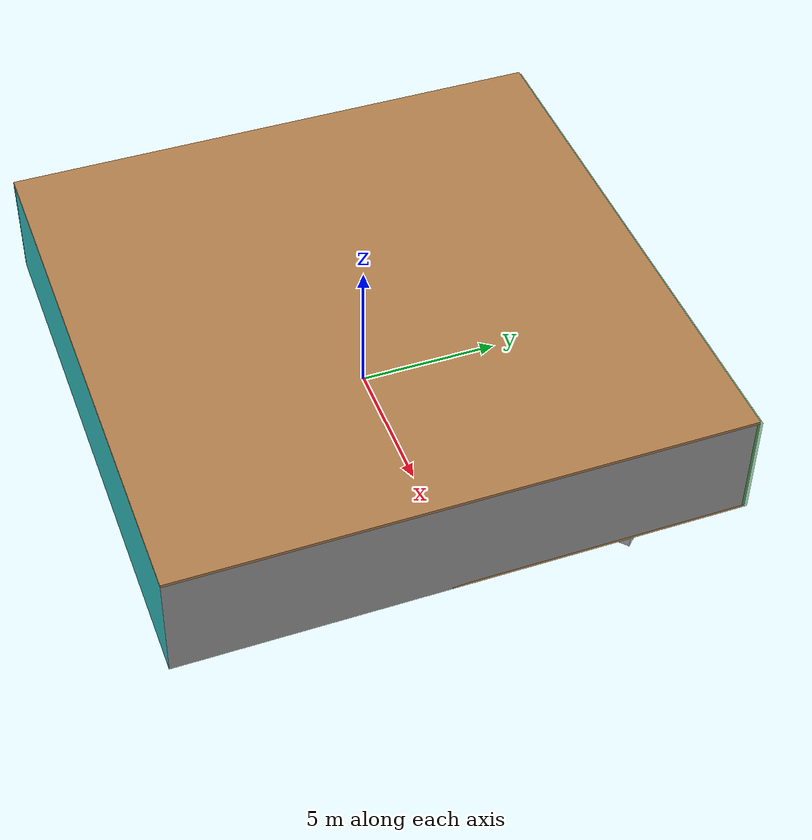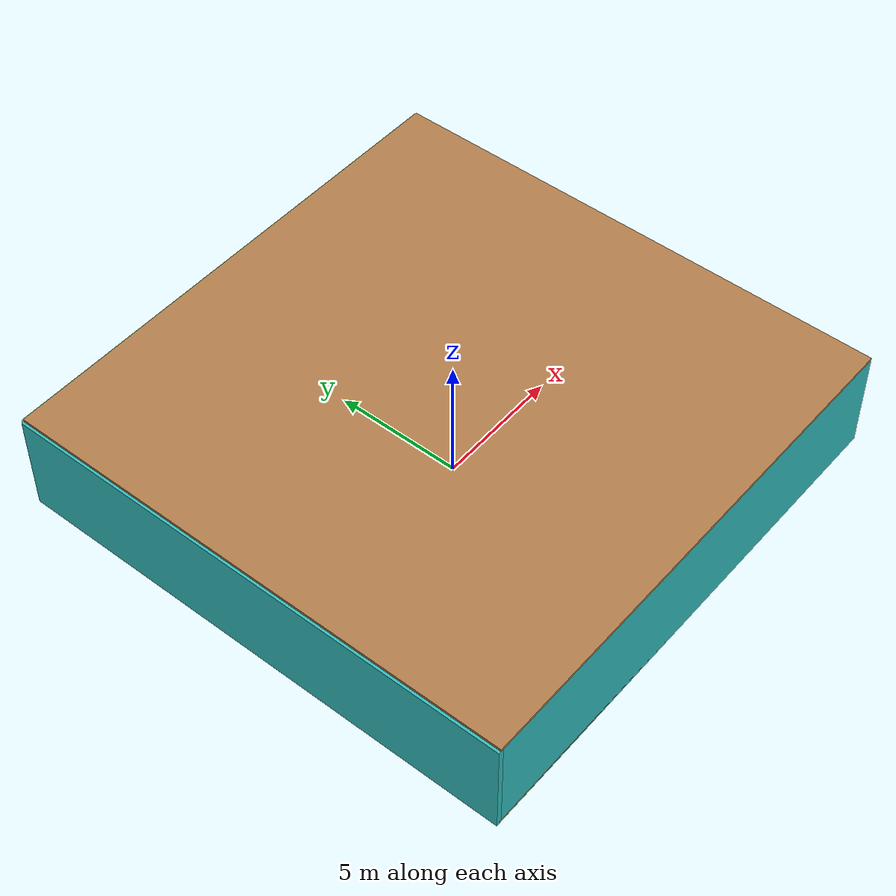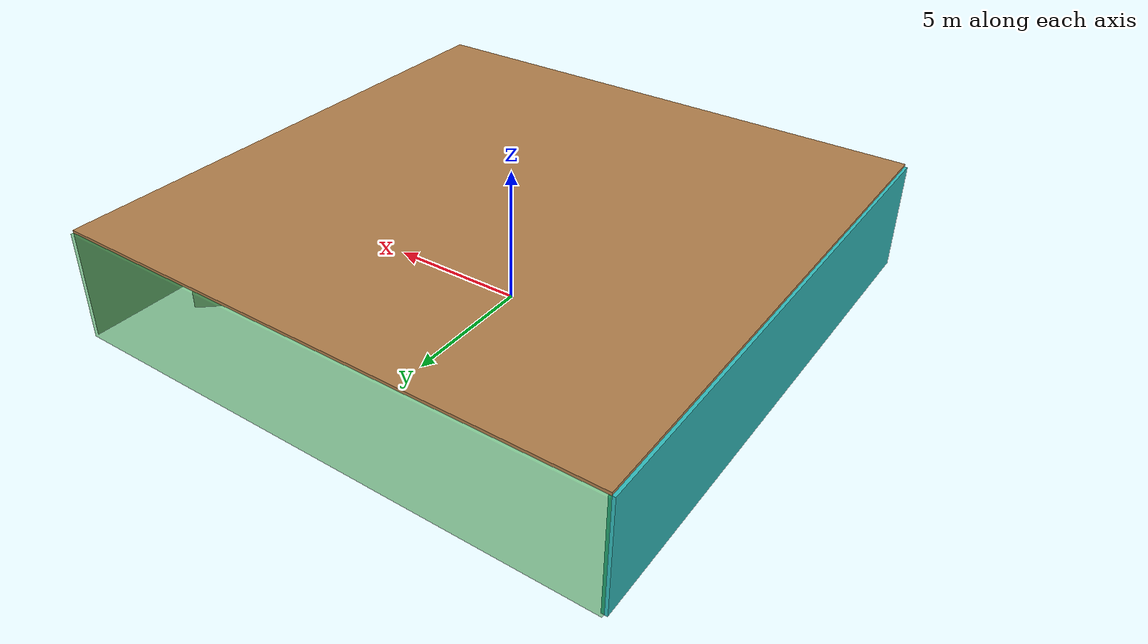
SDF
<sdf version="1.4">
 <world name="default">
  <physics type="ode">
   <max_step_size>0.001</max_step_size>
   <real_time_factor>1</real_time_factor>
   <real_time_update_rate>1000</real_time_update_rate>
   <gravity>0 0 -9.8</gravity>
  </physics>
  <scene><ambient>0.4 0.4 0.4 1</ambient><background>0.7 0.7 0.7 1</background><shadows>1</shadows></scene>
  <model name="Surrounding">
   <static>1</static>
   <link name="Ceiling">
    <collision name="Ceiling_Collision"><geometry><box><size>20 20 0.1</size></box></geometry></collision>
    <visual name="Ceiling_Visual">
     <geometry><box><size>20 20 0.1</size></box></geometry>
     <material>
      <script><uri>file://media/materials/scripts/gazebo.material</uri><name>Gazebo/WoodPallet</name></script>
     </material>
    </visual>
    <pose>0 0 4.05 0 0 0</pose>
   </link>
   <link name="Wall_South">
    <collision name="Wall_South_Collision">
     <geometry><box><size>20 0 4</size></box></geometry>
     <pose>0 0 2 0 -0 0</pose>
    </collision>
    <visual name="Wall_South_Visual">
     <pose>0 0 2 0 -0 0</pose>
     <geometry><box><size>20 0 4</size></box></geometry>
     <material>
      <script><uri>file://media/materials/scripts/gazebo.material</uri><name>Gazebo/TurquoiseGlow</name></script>
     </material>
    </visual>
    <velocity_decay><linear>0</linear><angular>0</angular></velocity_decay>
    <pose>0 -10 0 0 -0 0</pose>
   </link>
   <link name="Wall_East">
    <collision name="Wall_21_Collision">
     <geometry><box><size>20 0 4</size></box></geometry>
     <pose>0 0 2 0 -0 0</pose>
    </collision>
    <visual name="Wall_21_Visual">
     <pose>0 0 2 0 -0 0</pose>
     <geometry><box><size>20 0 4</size></box></geometry>
     <material>
      <script><uri>file://media/materials/scripts/gazebo.material</uri><name>Gazebo/Grey</name></script>
     </material>
    </visual>
    <velocity_decay><linear>0</linear><angular>0</angular></velocity_decay>
    <pose>10 0 0 0 -0 1.5708</pose>
   </link>
   <link name="Wall_North">
    <collision name="Wall_22_Collision">
     <geometry><box><size>20 0.2 4</size></box></geometry>
     <pose>0 0 2 0 -0 0</pose>
    </collision>
    <visual name="Wall_22_Visual">
     <pose>0 0 2 0 -0 0</pose>
     <geometry><box><size>20 0.2 4</size></box></geometry>
     <material>
      <script><uri>file://media/materials/scripts/gazebo.material</uri><name>Gazebo/GreenTransparent</name></script>
     </material>
    </visual>
    <velocity_decay><linear>0</linear><angular>0</angular></velocity_decay>
    <pose>0 10 0 0 -0 0</pose>
   </link>
   <link name="Wall_West">
    <collision name="Wall_23_Collision">
     <geometry><box><size>20 0.2 4</size></box></geometry>
     <pose>0 0 2 0 -0 0</pose>
    </collision>
    <visual name="Wall_23_Visual">
     <pose>0 0 2 0 -0 0</pose>
     <geometry><box><size>20 0.2 4</size></box></geometry>
     <material>
      <script>
       <uri>file://media/materials/scripts/gazebo.material</uri>
       <name>Gazebo/TurquoiseGlowOutline</name>
      </script>
     </material>
    </visual>
    <velocity_decay><linear>0</linear><angular>0</angular></velocity_decay>
    <pose>-10 0 0 0 0 -1.5708</pose>
   </link>
   <link name="Ground_link">
    <collision name="collision">
     <pose>0 0 .05 0 -0 0</pose>
     <geometry><box><size>20 20 0.1</size></box></geometry>
    </collision>
    <visual name="visual">
     <pose>0 0 .05 0 -0 0</pose>
     <geometry><box><size>20 20 0.1</size></box></geometry>
     <material>
      <script>
       <uri>file://media/materials/scripts/gazebo.material</uri>
       <name>Gazebo/OrangeTransparent</name>
      </script>
     </material>
    </visual>
   </link>
   <static>1</static>
  </model>
  <spherical_coordinates>
   <surface_model>EARTH_WGS84</surface_model>
   <latitude_deg>0</latitude_deg>
   <longitude_deg>0</longitude_deg>
   <elevation>0</elevation>
   <heading_deg>0</heading_deg>
  </spherical_coordinates>
  <light name="lightball_0" type="diffuse">
   <diffuse>0.8 0.8 0.8 1</diffuse>
   <specular>0.2 0.2 0.2 1</specular>
   <attenuation>
    <range>100</range>
    <constant>0.7</constant>
    <linear>0.01</linear>
    <quadratic>0.001</quadratic>
   </attenuation>
   <direction>-0.5 0.1 -0.9</direction>
   <pose>7.29323243995 -6.91062443537 2.83097554204 0 0 0</pose>
  </light>
  <light name="lightball_1" type="diffuse">
   <diffuse>0.8 0.8 0.8 1</diffuse>
   <specular>0.2 0.2 0.2 1</specular>
   <attenuation>
    <range>100</range>
    <constant>0.7</constant>
    <linear>0.01</linear>
    <quadratic>0.001</quadratic>
   </attenuation>
   <direction>-0.5 0.1 -0.9</direction>
   <pose>-2.52139661432 8.07149067501 3.16985652571 0 0 0</pose>
  </light>
  <light name="lightball_2" type="diffuse">
   <diffuse>0.8 0.8 0.8 1</diffuse>
   <specular>0.2 0.2 0.2 1</specular>
   <attenuation>
    <range>100</range>
    <constant>0.7</constant>
    <linear>0.01</linear>
    <quadratic>0.001</quadratic>
   </attenuation>
   <direction>-0.5 0.1 -0.9</direction>
   <pose>-2.08402988795 -7.54003683866 3.39807416386 0 0 0</pose>
  </light>
  <include>
   <uri>model://robocup_3Dsim_goal</uri>
   <pose>-8.02844787584 4.19436609479 0 0 0 0.102480300528</pose>
  </include>
  <include><uri>model://table</uri><pose>-4.95935378194 -5.02305531503 0 0 0 2.16945643318</pose></include>
  <include>
   <uri>model://robocup_3Dsim_goal</uri>
   <pose>7.9518894754 -0.788871318856 0 0 0 2.37271920559</pose>
  </include>
  <include>
   <uri>model://textured_shapes</uri>
   <pose>8.10515125357 4.86779252807 0 0 0 2.31268035703</pose>
  </include>
 </world>
</sdf>

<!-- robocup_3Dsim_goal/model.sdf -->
<sdf version="1.5">
  <model name="robocup_3d_goal">
    <static>true</static>
    <link name="left_post">
      <pose>0 1.05 0.45 0 0 0</pose>
      <collision name="collision">
        <geometry>
          <cylinder>
            <radius>0.05</radius>
            <length>0.9</length>
          </cylinder>
        </geometry>
      </collision>
      <visual name="visual">
        <geometry>
          <cylinder>
            <radius>0.05</radius>
            <length>0.9</length>
          </cylinder>
        </geometry>
        <material>
          <script>
            <uri>file://media/materials/scripts/gazebo.material</uri>
            <name>Gazebo/ZincYellow</name>
          </script>
        </material>
      </visual>
    </link>
    <link name="left_support_horiz_lower">
      <pose>0.30 1.05 0.01 0 0 0</pose>
      <collision name="collision">
        <geometry>
          <box>
            <size>0.50 0.02 0.02</size>
          </box>
        </geometry>
      </collision>
      <visual name="visual">
        <geometry>
          <box>
            <size>0.50 0.02 0.02</size>
          </box>
        </geometry>
        <material>
          <script>
            <uri>file://media/materials/scripts/gazebo.material</uri>
            <name>Gazebo/White</name>
          </script>
        </material>
      </visual>
    </link>
    <link name="left_support_horiz_upper">
      <pose>0.30 1.05 0.79 0 0 0</pose>
      <collision name="collision">
        <geometry>
          <box>
            <size>0.50 0.02 0.02</size>
          </box>
        </geometry>
      </collision>
      <visual name="visual">
        <geometry>
          <box>
            <size>0.50 0.02 0.02</size>
          </box>
        </geometry>
        <material>
          <script>
            <uri>file://media/materials/scripts/gazebo.material</uri>
            <name>Gazebo/White</name>
          </script>
        </material>
      </visual>
    </link>
    <link name="left_support_vertical">
      <pose>0.56 1.05 0.4 0 1.5708 0</pose>
      <collision name="collision">
        <geometry>
          <box>
            <size>0.80 0.02 0.02</size>
          </box>
        </geometry>
      </collision>
      <visual name="visual">
        <geometry>
          <box>
            <size>0.80 0.02 0.02</size>
          </box>
        </geometry>
        <material>
          <script>
            <uri>file://media/materials/scripts/gazebo.material</uri>
            <name>Gazebo/White</name>
          </script>
        </material>
      </visual>
    </link>
    <link name="right_support_horiz_lower">
      <pose>0.30 -1.05 0.01 0 0 0</pose>
      <collision name="collision">
        <geometry>
          <box>
            <size>0.50 0.02 0.02</size>
          </box>
        </geometry>
      </collision>
      <visual name="visual">
        <geometry>
          <box>
            <size>0.50 0.02 0.02</size>
          </box>
        </geometry>
        <material>
          <script>
            <uri>file://media/materials/scripts/gazebo.material</uri>
            <name>Gazebo/White</name>
          </script>
        </material>
      </visual>
    </link>
    <link name="right_support_horiz_upper">
      <pose>0.30 -1.05 0.79 0 0 0</pose>
      <collision name="collision">
        <geometry>
          <box>
            <size>0.50 0.02 0.02</size>
          </box>
        </geometry>
      </collision>
      <visual name="visual">
        <geometry>
          <box>
            <size>0.50 0.02 0.02</size>
          </box>
        </geometry>
        <material>
          <script>
            <uri>file://media/materials/scripts/gazebo.material</uri>
            <name>Gazebo/White</name>
          </script>
        </material>
      </visual>
    </link>
    <link name="right_support_vertical">
      <pose>0.56 -1.05 0.4 0 1.5708 0</pose>
      <collision name="collision">
        <geometry>
          <box>
            <size>0.80 0.02 0.02</size>
          </box>
        </geometry>
      </collision>
      <visual name="visual">
        <geometry>
          <box>
            <size>0.80 0.02 0.02</size>
          </box>
        </geometry>
        <material>
          <script>
            <uri>file://media/materials/scripts/gazebo.material</uri>
            <name>Gazebo/White</name>
          </script>
        </material>
      </visual>
    </link>
    <link name="center_support_horiz_lower">
      <pose>0.56 0 0.01 0 1.5708 0</pose>
      <collision name="collision">
        <geometry>
          <box>
            <size>0.02 2.08 0.02</size>
          </box>
        </geometry>
      </collision>
      <visual name="visual">
        <geometry>
          <box>
            <size>0.02 2.08 0.02</size>
          </box>
        </geometry>
        <material>
          <script>
            <uri>file://media/materials/scripts/gazebo.material</uri>
            <name>Gazebo/White</name>
          </script>
        </material>
      </visual>
    </link>
    <link name="center_support_horiz_upper">
      <pose>0.56 0 0.79 0 1.5708 0</pose>
      <collision name="collision">
        <geometry>
          <box>
            <size>0.02 2.08 0.02</size>
          </box>
        </geometry>
      </collision>
      <visual name="visual">
        <geometry>
          <box>
            <size>0.02 2.08 0.02</size>
          </box>
        </geometry>
        <material>
          <script>
            <uri>file://media/materials/scripts/gazebo.material</uri>
            <name>Gazebo/White</name>
          </script>
        </material>
      </visual>
    </link>
    <link name="right_post">
      <pose>0 -1.05 0.45 0 0 0</pose>
      <collision name="collision">
        <geometry>
          <cylinder>
            <radius>0.05</radius>
            <length>0.9</length>
          </cylinder>
        </geometry>
      </collision>
      <visual name="visual">
        <geometry>
          <cylinder>
            <radius>0.05</radius>
            <length>0.9</length>
          </cylinder>
        </geometry>
        <material>
          <script>
            <uri>file://media/materials/scripts/gazebo.material</uri>
            <name>Gazebo/ZincYellow</name>
          </script>
        </material>
      </visual>
    </link>
    <link name="crossbar">
      <pose>0 0 0.85 1.57 1.57 0</pose>
      <collision name="collision">
        <geometry>
          <cylinder>
            <radius>0.05</radius>
            <length>2.0</length>
          </cylinder>
        </geometry>
      </collision>
      <visual name="visual">
        <geometry>
          <cylinder>
            <radius>0.05</radius>
            <length>2.0</length>
          </cylinder>
        </geometry>
        <material>
          <script>
            <uri>file://media/materials/scripts/gazebo.material</uri>
            <name>Gazebo/ZincYellow</name>
          </script>
        </material>
      </visual>
    </link>
    <link name="center_net">
      <pose>0.56 0 0.40 0 0 0</pose>
      <collision name="collision">
        <geometry>
          <box>
            <size>0.01 2.1 0.80</size>
          </box>
        </geometry>
      </collision>
      <visual name="visual">
        <geometry>
          <box>
            <size>0.01 2.1 0.80</size>
          </box>
        </geometry>
        <material>
          <script>
            <uri>model://../model_source/models/robocup09_spl_field/materials/scripts/</uri>
            <uri>model://../model_source/models/robocup09_spl_field/materials/textures/</uri>
            <name>RoboCup/Net</name>
          </script>
        </material>
      </visual>
    </link>
    <link name="left_net">
      <pose>0.30 1.05 0.40 0 0 0</pose>
      <collision name="collision">
        <geometry>
          <box>
            <size>0.50 0.01 0.76</size>
          </box>
        </geometry>
      </collision>
      <visual name="visual">
        <geometry>
          <box>
            <size>0.50 0.01 0.76</size>
          </box>
        </geometry>
        <material>
          <script>
            <uri>model://../model_source/models/robocup09_spl_field/materials/scripts/</uri>
            <uri>model://../model_source/models/robocup09_spl_field/materials/textures/</uri>
            <name>RoboCup/Net</name>
          </script>
        </material>
      </visual>
    </link>
    <link name="right_net">
      <pose>0.30 -1.05 0.40 0 0 0</pose>
      <collision name="collision">
        <geometry>
          <box>
            <size>0.50 0.01 0.76</size>
          </box>
        </geometry>
      </collision>
      <visual name="visual">
        <geometry>
          <box>
            <size>0.50 0.01 0.76</size>
          </box>
        </geometry>
        <material>
          <script>
            <uri>model://../model_source/models/robocup09_spl_field/materials/scripts/</uri>
            <uri>model://../model_source/models/robocup09_spl_field/materials/textures/</uri>
            <name>RoboCup/Net</name>
          </script>
        </material>
      </visual>
    </link>
  </model>
</sdf>

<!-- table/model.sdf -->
<sdf version="1.5">
  <model name="table">
    <static>true</static>
    <link name="link">
      <collision name="surface">
        <pose>0 0 1.0 0 0 0</pose>
        <geometry>
          <box>
            <size>1.5 0.8 0.03</size>
          </box>
        </geometry>
        <surface>
          <friction>
            <ode>
              <mu>0.6</mu>
              <mu2>0.6</mu2>
            </ode>
          </friction>
        </surface>
      </collision>
      <visual name="visual1">
        <pose>0 0 1.0 0 0 0</pose>
        <geometry>
          <box>
            <size>1.5 0.8 0.03</size>
          </box>
        </geometry>
        <material>
          <script>
            <uri>model://media/materials/scripts/gazebo.material</uri>
            <name>Gazebo/Wood</name>
          </script>
        </material>
      </visual>
      <collision name="front_left_leg">
        <pose>0.68 0.38 0.5 0 0 0</pose>
        <geometry>
          <cylinder>
            <radius>0.02</radius>
            <length>1.0</length>
          </cylinder>
        </geometry>
      </collision>
      <visual name="front_left_leg">
        <pose>0.68 0.38 0.5 0 0 0</pose>
        <geometry>
          <cylinder>
            <radius>0.02</radius>
            <length>1.0</length>
          </cylinder>
        </geometry>
        <material>
          <script>
            <uri>model://media/materials/scripts/gazebo.material</uri>
            <name>Gazebo/Grey</name>
          </script>
        </material>
      </visual>
      <collision name="front_right_leg">
        <pose>0.68 -0.38 0.5 0 0 0</pose>
        <geometry>
          <cylinder>
            <radius>0.02</radius>
            <length>1.0</length>
          </cylinder>
        </geometry>
      </collision>
      <visual name="front_right_leg">
        <pose>0.68 -0.38 0.5 0 0 0</pose>
        <geometry>
          <cylinder>
            <radius>0.02</radius>
            <length>1.0</length>
          </cylinder>
        </geometry>
        <material>
          <script>
            <uri>model://media/materials/scripts/gazebo.material</uri>
            <name>Gazebo/Grey</name>
          </script>
        </material>
      </visual>
      <collision name="back_right_leg">
        <pose>-0.68 -0.38 0.5 0 0 0</pose>
        <geometry>
          <cylinder>
            <radius>0.02</radius>
            <length>1.0</length>
          </cylinder>
        </geometry>
      </collision>
      <visual name="back_right_leg">
        <pose>-0.68 -0.38 0.5 0 0 0</pose>
        <geometry>
          <cylinder>
            <radius>0.02</radius>
            <length>1.0</length>
          </cylinder>
        </geometry>
        <material>
          <script>
            <uri>model://media/materials/scripts/gazebo.material</uri>
            <name>Gazebo/Grey</name>
          </script>
        </material>
      </visual>
      <collision name="back_left_leg">
        <pose>-0.68 0.38 0.5 0 0 0</pose>
        <geometry>
          <cylinder>
            <radius>0.02</radius>
            <length>1.0</length>
          </cylinder>
        </geometry>
      </collision>
      <visual name="back_left_leg">
        <pose>-0.68 0.38 0.5 0 0 0</pose>
        <geometry>
          <cylinder>
            <radius>0.02</radius>
            <length>1.0</length>
          </cylinder>
        </geometry>
        <material>
          <script>
            <uri>model://media/materials/scripts/gazebo.material</uri>
            <name>Gazebo/Grey</name>
          </script>
        </material>
      </visual>
    </link>
  </model>
</sdf>

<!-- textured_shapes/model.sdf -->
<sdf version="1.6">
  <model name="textured_shapes">
    <pose>0 0 0.5 0 0 0</pose>
    <link name="box">
      <pose>0 -1.5 0 0 0 0</pose>
      <collision name="collision">
        <geometry>
          <box>
            <size>1 1 1</size>
          </box>
        </geometry>
      </collision>
      <visual name="visual">
        <geometry>
          <box>
            <size>1 1 1</size>
          </box>
        </geometry>
        <material>
          <script>
            <uri>model://../model_source/models/textured_shapes/materials/scripts</uri>
            <uri>model://../model_source/models/textured_shapes/materials/textures</uri>
            <name>TexturedShape/Squares</name>
          </script>
        </material>
      </visual>
    </link>
    <link name="sphere">
      <collision name="collision">
        <geometry>
          <sphere>
            <radius>0.5</radius>
          </sphere>
        </geometry>
      </collision>
      <visual name="visual">
        <geometry>
          <sphere>
            <radius>0.5</radius>
          </sphere>
        </geometry>
        <material>
          <script>
            <uri>model://../model_source/models/textured_shapes/materials/scripts</uri>
            <uri>model://../model_source/models/textured_shapes/materials/textures</uri>
            <name>TexturedShape/Squares</name>
          </script>
        </material>
      </visual>
    </link>
    <link name="cylinder">
      <pose>0 1.5 0 0 0 0</pose>
      <collision name="collision">
        <geometry>
          <cylinder>
            <radius>0.5</radius>
            <length>1</length>
          </cylinder>
        </geometry>
      </collision>
      <visual name="visual">
        <geometry>
          <cylinder>
            <radius>0.5</radius>
            <length>1</length>
          </cylinder>
        </geometry>
        <material>
          <script>
            <uri>model://../model_source/models/textured_shapes/materials/scripts</uri>
            <uri>model://../model_source/models/textured_shapes/materials/textures</uri>
            <name>TexturedShape/Squares</name>
          </script>
        </material>
      </visual>
    </link>
  </model>
</sdf>
